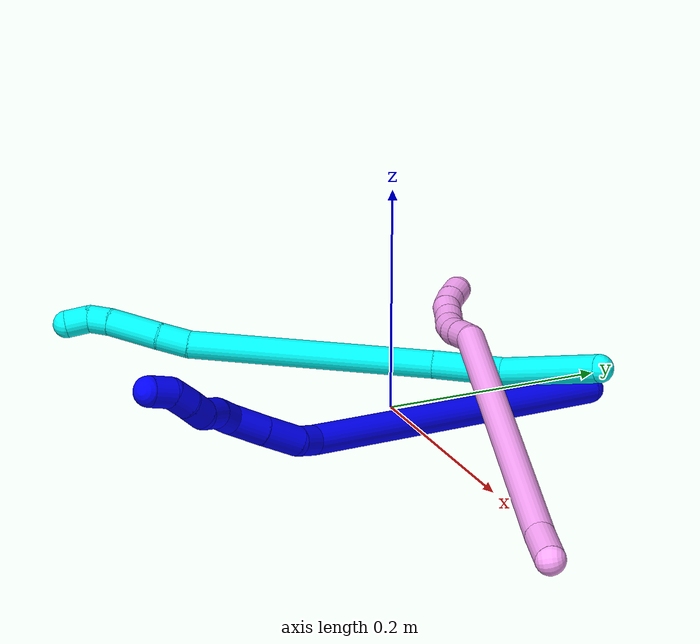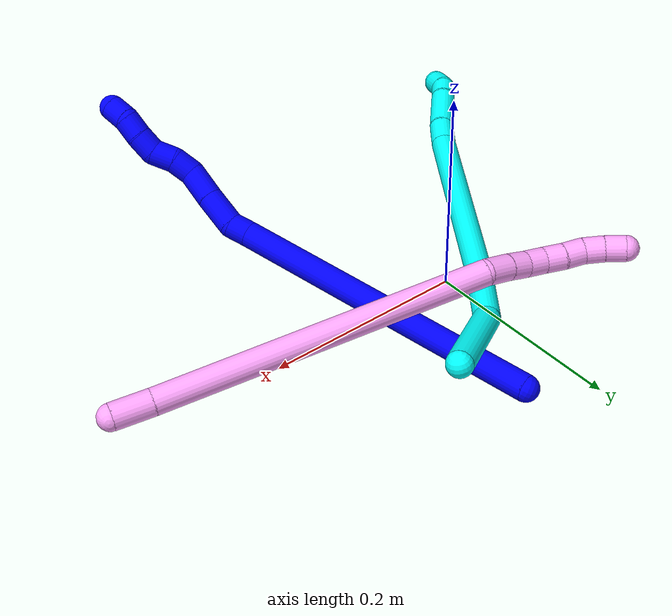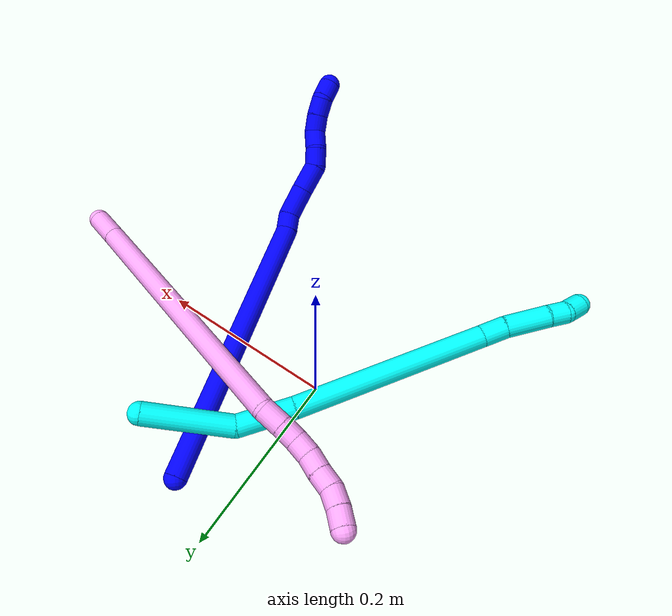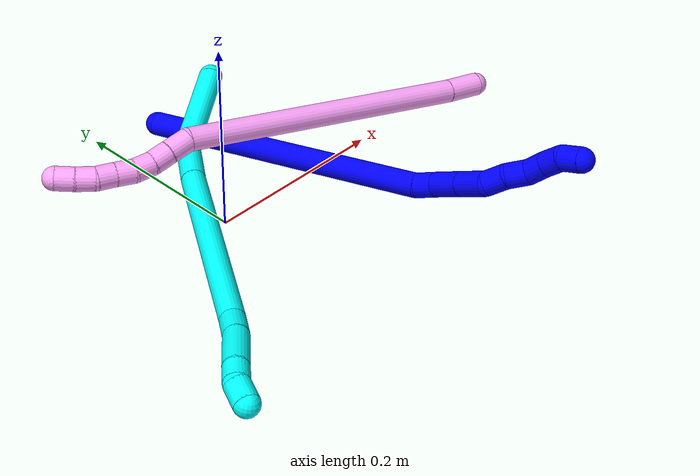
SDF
<sdf version="1.7">
 <world name="default">
  <model name="1">
   <static>0</static>
   <link name="1">
    <collision name="collision-cylinder-e_1_1_4">
     <pose>0.033354 -0.074062 0.131808 0.51193 0.21713 0.057033</pose>
     <geometry><cylinder><radius>0.0125</radius><length>0.309652</length></cylinder></geometry>
     <surface>
      <friction><ode><mu>1.16</mu><mu2>1.16</mu2><slip1>0</slip1><slip2>0</slip2></ode></friction>
      <contact><ode><kp>1e+06</kp><kd>1</kd><max_vel>0</max_vel><min_depth>0.001</min_depth></ode></contact>
     </surface>
    </collision>
    <visual name="visual-cylinder-e_1_1_4">
     <pose>0.033354 -0.074062 0.131808 0.51193 0.21713 0.057033</pose>
     <geometry><cylinder><radius>0.0125</radius><length>0.309652</length></cylinder></geometry>
     <material><ambient>0 0 1 1</ambient></material>
    </visual>
    <collision name="collision-cylinder-e_2_4_5">
     <pose>0.067639 -0.150783 0.273237 0.269541 0.093044 0.012625</pose>
     <geometry><cylinder><radius>0.0125</radius><length>0.020049</length></cylinder></geometry>
     <surface>
      <friction><ode><mu>1.16</mu><mu2>1.16</mu2><slip1>0</slip1><slip2>0</slip2></ode></friction>
      <contact><ode><kp>1e+06</kp><kd>1</kd><max_vel>0</max_vel><min_depth>0.001</min_depth></ode></contact>
     </surface>
    </collision>
    <visual name="visual-cylinder-e_2_4_5">
     <pose>0.067639 -0.150783 0.273237 0.269541 0.093044 0.012625</pose>
     <geometry><cylinder><radius>0.0125</radius><length>0.020049</length></cylinder></geometry>
     <material><ambient>0 0 1 1</ambient></material>
    </visual>
    <collision name="collision-cylinder-e_3_5_6">
     <pose>0.065426 -0.162755 0.297145 0.577776 -0.182289 -0.054314</pose>
     <geometry><cylinder><radius>0.0125</radius><length>0.034685</length></cylinder></geometry>
     <surface>
      <friction><ode><mu>1.16</mu><mu2>1.16</mu2><slip1>0</slip1><slip2>0</slip2></ode></friction>
      <contact><ode><kp>1e+06</kp><kd>1</kd><max_vel>0</max_vel><min_depth>0.001</min_depth></ode></contact>
     </surface>
    </collision>
    <visual name="visual-cylinder-e_3_5_6">
     <pose>0.065426 -0.162755 0.297145 0.577776 -0.182289 -0.054314</pose>
     <geometry><cylinder><radius>0.0125</radius><length>0.034685</length></cylinder></geometry>
     <material><ambient>0 0 1 1</ambient></material>
    </visual>
    <collision name="collision-cylinder-e_4_6_7">
     <pose>0.059016 -0.181005 0.324224 0.60966 -0.206339 -0.06513</pose>
     <geometry><cylinder><radius>0.0125</radius><length>0.031884</length></cylinder></geometry>
     <surface>
      <friction><ode><mu>1.16</mu><mu2>1.16</mu2><slip1>0</slip1><slip2>0</slip2></ode></friction>
      <contact><ode><kp>1e+06</kp><kd>1</kd><max_vel>0</max_vel><min_depth>0.001</min_depth></ode></contact>
     </surface>
    </collision>
    <visual name="visual-cylinder-e_4_6_7">
     <pose>0.059016 -0.181005 0.324224 0.60966 -0.206339 -0.06513</pose>
     <geometry><cylinder><radius>0.0125</radius><length>0.031884</length></cylinder></geometry>
     <material><ambient>0 0 1 1</ambient></material>
    </visual>
    <collision name="collision-cylinder-e_5_7_8">
     <pose>0.053867 -0.191292 0.3474 0.129563 -0.177977 -0.011576</pose>
     <geometry><cylinder><radius>0.0125</radius><length>0.021279</length></cylinder></geometry>
     <surface>
      <friction><ode><mu>1.16</mu><mu2>1.16</mu2><slip1>0</slip1><slip2>0</slip2></ode></friction>
      <contact><ode><kp>1e+06</kp><kd>1</kd><max_vel>0</max_vel><min_depth>0.001</min_depth></ode></contact>
     </surface>
    </collision>
    <visual name="visual-cylinder-e_5_7_8">
     <pose>0.053867 -0.191292 0.3474 0.129563 -0.177977 -0.011576</pose>
     <geometry><cylinder><radius>0.0125</radius><length>0.021279</length></cylinder></geometry>
     <material><ambient>0 0 1 1</ambient></material>
    </visual>
    <collision name="collision-cylinder-e_6_8_9">
     <pose>0.053087 -0.193364 0.36855 0.066667 0.101973 0.003403</pose>
     <geometry><cylinder><radius>0.0125</radius><length>0.021693</length></cylinder></geometry>
     <surface>
      <friction><ode><mu>1.16</mu><mu2>1.16</mu2><slip1>0</slip1><slip2>0</slip2></ode></friction>
      <contact><ode><kp>1e+06</kp><kd>1</kd><max_vel>0</max_vel><min_depth>0.001</min_depth></ode></contact>
     </surface>
    </collision>
    <visual name="visual-cylinder-e_6_8_9">
     <pose>0.053087 -0.193364 0.36855 0.066667 0.101973 0.003403</pose>
     <geometry><cylinder><radius>0.0125</radius><length>0.021693</length></cylinder></geometry>
     <material><ambient>0 0 1 1</ambient></material>
    </visual>
    <collision name="collision-cylinder-e_7_9_10">
     <pose>0.050614 -0.19633 0.388655 0.236121 -0.356488 -0.042731</pose>
     <geometry><cylinder><radius>0.0125</radius><length>0.020501</length></cylinder></geometry>
     <surface>
      <friction><ode><mu>1.16</mu><mu2>1.16</mu2><slip1>0</slip1><slip2>0</slip2></ode></friction>
      <contact><ode><kp>1e+06</kp><kd>1</kd><max_vel>0</max_vel><min_depth>0.001</min_depth></ode></contact>
     </surface>
    </collision>
    <visual name="visual-cylinder-e_7_9_10">
     <pose>0.050614 -0.19633 0.388655 0.236121 -0.356488 -0.042731</pose>
     <geometry><cylinder><radius>0.0125</radius><length>0.020501</length></cylinder></geometry>
     <material><ambient>0 0 1 1</ambient></material>
    </visual>
    <collision name="collision-cylinder-e_8_10_11">
     <pose>0.043445 -0.202133 0.406681 0.388611 -0.365481 -0.072702</pose>
     <geometry><cylinder><radius>0.0125</radius><length>0.0201</length></cylinder></geometry>
     <surface>
      <friction><ode><mu>1.16</mu><mu2>1.16</mu2><slip1>0</slip1><slip2>0</slip2></ode></friction>
      <contact><ode><kp>1e+06</kp><kd>1</kd><max_vel>0</max_vel><min_depth>0.001</min_depth></ode></contact>
     </surface>
    </collision>
    <visual name="visual-cylinder-e_8_10_11">
     <pose>0.043445 -0.202133 0.406681 0.388611 -0.365481 -0.072702</pose>
     <geometry><cylinder><radius>0.0125</radius><length>0.0201</length></cylinder></geometry>
     <material><ambient>0 0 1 1</ambient></material>
    </visual>
    <collision name="collision-cylinder-e_9_11_2">
     <pose>0.040198 -0.210911 0.423981 0.54492 0.034235 0.009566</pose>
     <geometry><cylinder><radius>0.0125</radius><length>0.020158</length></cylinder></geometry>
     <surface>
      <friction><ode><mu>1.16</mu><mu2>1.16</mu2><slip1>0</slip1><slip2>0</slip2></ode></friction>
      <contact><ode><kp>1e+06</kp><kd>1</kd><max_vel>0</max_vel><min_depth>0.001</min_depth></ode></contact>
     </surface>
    </collision>
    <visual name="visual-cylinder-e_9_11_2">
     <pose>0.040198 -0.210911 0.423981 0.54492 0.034235 0.009566</pose>
     <geometry><cylinder><radius>0.0125</radius><length>0.020158</length></cylinder></geometry>
     <material><ambient>0 0 1 1</ambient></material>
    </visual>
    <collision name="collision-sphere-2">
     <pose>0.040543 -0.216133 0.432596 0 -0 0</pose>
     <geometry><sphere><radius>0.0125</radius></sphere></geometry>
     <surface>
      <friction><ode><mu>1.16</mu><mu2>1.16</mu2><slip1>0</slip1><slip2>0</slip2></ode></friction>
      <contact><ode><kp>1e+06</kp><kd>1</kd><max_vel>0</max_vel><min_depth>0.001</min_depth></ode></contact>
     </surface>
    </collision>
    <visual name="visual-sphere-2">
     <pose>0.040543 -0.216133 0.432596 0 -0 0</pose>
     <geometry><sphere><radius>0.0125</radius></sphere></geometry>
     <material><ambient>0 0 1 1</ambient></material>
    </visual>
    <collision name="collision-sphere-11">
     <pose>0.039853 -0.20569 0.415367 0 -0 0</pose>
     <geometry><sphere><radius>0.0125</radius></sphere></geometry>
     <surface>
      <friction><ode><mu>1.16</mu><mu2>1.16</mu2><slip1>0</slip1><slip2>0</slip2></ode></friction>
      <contact><ode><kp>1e+06</kp><kd>1</kd><max_vel>0</max_vel><min_depth>0.001</min_depth></ode></contact>
     </surface>
    </collision>
    <visual name="visual-sphere-11">
     <pose>0.039853 -0.20569 0.415367 0 -0 0</pose>
     <geometry><sphere><radius>0.0125</radius></sphere></geometry>
     <material><ambient>0 0 1 1</ambient></material>
    </visual>
    <collision name="collision-sphere-10">
     <pose>0.047037 -0.198577 0.397995 0 -0 0</pose>
     <geometry><sphere><radius>0.0125</radius></sphere></geometry>
     <surface>
      <friction><ode><mu>1.16</mu><mu2>1.16</mu2><slip1>0</slip1><slip2>0</slip2></ode></friction>
      <contact><ode><kp>1e+06</kp><kd>1</kd><max_vel>0</max_vel><min_depth>0.001</min_depth></ode></contact>
     </surface>
    </collision>
    <visual name="visual-sphere-10">
     <pose>0.047037 -0.198577 0.397995 0 -0 0</pose>
     <geometry><sphere><radius>0.0125</radius></sphere></geometry>
     <material><ambient>0 0 1 1</ambient></material>
    </visual>
    <collision name="collision-sphere-9">
     <pose>0.054191 -0.194083 0.379316 0 -0 0</pose>
     <geometry><sphere><radius>0.0125</radius></sphere></geometry>
     <surface>
      <friction><ode><mu>1.16</mu><mu2>1.16</mu2><slip1>0</slip1><slip2>0</slip2></ode></friction>
      <contact><ode><kp>1e+06</kp><kd>1</kd><max_vel>0</max_vel><min_depth>0.001</min_depth></ode></contact>
     </surface>
    </collision>
    <visual name="visual-sphere-9">
     <pose>0.054191 -0.194083 0.379316 0 -0 0</pose>
     <geometry><sphere><radius>0.0125</radius></sphere></geometry>
     <material><ambient>0 0 1 1</ambient></material>
    </visual>
    <collision name="collision-sphere-4">
     <pose>0.066708 -0.148125 0.263617 0 -0 0</pose>
     <geometry><sphere><radius>0.0125</radius></sphere></geometry>
     <surface>
      <friction><ode><mu>1.16</mu><mu2>1.16</mu2><slip1>0</slip1><slip2>0</slip2></ode></friction>
      <contact><ode><kp>1e+06</kp><kd>1</kd><max_vel>0</max_vel><min_depth>0.001</min_depth></ode></contact>
     </surface>
    </collision>
    <visual name="visual-sphere-4">
     <pose>0.066708 -0.148125 0.263617 0 -0 0</pose>
     <geometry><sphere><radius>0.0125</radius></sphere></geometry>
     <material><ambient>0 0 1 1</ambient></material>
    </visual>
    <collision name="collision-sphere-1">
     <geometry><sphere><radius>0.0125</radius></sphere></geometry>
     <surface>
      <friction><ode><mu>1.16</mu><mu2>1.16</mu2><slip1>0</slip1><slip2>0</slip2></ode></friction>
      <contact><ode><kp>1e+06</kp><kd>1</kd><max_vel>0</max_vel><min_depth>0.001</min_depth></ode></contact>
     </surface>
    </collision>
    <visual name="visual-sphere-1">
     <geometry><sphere><radius>0.0125</radius></sphere></geometry>
     <material><ambient>0 0 1 1</ambient></material>
    </visual>
    <collision name="collision-sphere-8">
     <pose>0.051983 -0.192645 0.357784 0 -0 0</pose>
     <geometry><sphere><radius>0.0125</radius></sphere></geometry>
     <surface>
      <friction><ode><mu>1.16</mu><mu2>1.16</mu2><slip1>0</slip1><slip2>0</slip2></ode></friction>
      <contact><ode><kp>1e+06</kp><kd>1</kd><max_vel>0</max_vel><min_depth>0.001</min_depth></ode></contact>
     </surface>
    </collision>
    <visual name="visual-sphere-8">
     <pose>0.051983 -0.192645 0.357784 0 -0 0</pose>
     <geometry><sphere><radius>0.0125</radius></sphere></geometry>
     <material><ambient>0 0 1 1</ambient></material>
    </visual>
    <collision name="collision-sphere-5">
     <pose>0.06857 -0.15344 0.282858 0 -0 0</pose>
     <geometry><sphere><radius>0.0125</radius></sphere></geometry>
     <surface>
      <friction><ode><mu>1.16</mu><mu2>1.16</mu2><slip1>0</slip1><slip2>0</slip2></ode></friction>
      <contact><ode><kp>1e+06</kp><kd>1</kd><max_vel>0</max_vel><min_depth>0.001</min_depth></ode></contact>
     </surface>
    </collision>
    <visual name="visual-sphere-5">
     <pose>0.06857 -0.15344 0.282858 0 -0 0</pose>
     <geometry><sphere><radius>0.0125</radius></sphere></geometry>
     <material><ambient>0 0 1 1</ambient></material>
    </visual>
    <collision name="collision-sphere-6">
     <pose>0.062283 -0.17207 0.311431 0 -0 0</pose>
     <geometry><sphere><radius>0.0125</radius></sphere></geometry>
     <surface>
      <friction><ode><mu>1.16</mu><mu2>1.16</mu2><slip1>0</slip1><slip2>0</slip2></ode></friction>
      <contact><ode><kp>1e+06</kp><kd>1</kd><max_vel>0</max_vel><min_depth>0.001</min_depth></ode></contact>
     </surface>
    </collision>
    <visual name="visual-sphere-6">
     <pose>0.062283 -0.17207 0.311431 0 -0 0</pose>
     <geometry><sphere><radius>0.0125</radius></sphere></geometry>
     <material><ambient>0 0 1 1</ambient></material>
    </visual>
    <collision name="collision-sphere-7">
     <pose>0.05575 -0.189939 0.337016 0 -0 0</pose>
     <geometry><sphere><radius>0.0125</radius></sphere></geometry>
     <surface>
      <friction><ode><mu>1.16</mu><mu2>1.16</mu2><slip1>0</slip1><slip2>0</slip2></ode></friction>
      <contact><ode><kp>1e+06</kp><kd>1</kd><max_vel>0</max_vel><min_depth>0.001</min_depth></ode></contact>
     </surface>
    </collision>
    <visual name="visual-sphere-7">
     <pose>0.05575 -0.189939 0.337016 0 -0 0</pose>
     <geometry><sphere><radius>0.0125</radius></sphere></geometry>
     <material><ambient>0 0 1 1</ambient></material>
    </visual>
    <inertial>
     <pose>0.041708 -0.115954 0.214025 0 -0 0</pose>
     <mass>0.5</mass>
     <inertia>
      <ixx>0.002583</ixx>
      <ixy>0</ixy>
      <ixz>0</ixz>
      <iyy>0.002316</iyy>
      <iyz>0</iyz>
      <izz>0.000697</izz>
     </inertia>
    </inertial>
   </link>
   <pose>0.057993 0.165974 0.011495 0.182961 1.15858 -0.63953</pose>
  </model>
  <model name="3">
   <static>0</static>
   <link name="3">
    <collision name="collision-cylinder-e_1_1_4">
     <pose>-0.040622 -0.02107 -0.016817 2.24442 -0.984887 -1.67918</pose>
     <geometry><cylinder><radius>0.0125</radius><length>0.097508</length></cylinder></geometry>
     <surface>
      <friction><ode><mu>1.16</mu><mu2>1.16</mu2><slip1>0</slip1><slip2>0</slip2></ode></friction>
      <contact><ode><kp>1e+06</kp><kd>1</kd><max_vel>0</max_vel><min_depth>0.001</min_depth></ode></contact>
     </surface>
    </collision>
    <visual name="visual-cylinder-e_1_1_4">
     <pose>-0.040622 -0.02107 -0.016817 2.24442 -0.984887 -1.67918</pose>
     <geometry><cylinder><radius>0.0125</radius><length>0.097508</length></cylinder></geometry>
     <material><ambient>0.003922 1 0.996078 1</ambient></material>
    </visual>
    <collision name="collision-cylinder-e_2_4_5">
     <pose>-0.103645 -0.064507 -0.034263 1.59886 -0.78596 -0.806015</pose>
     <geometry><cylinder><radius>0.0125</radius><length>0.063324</length></cylinder></geometry>
     <surface>
      <friction><ode><mu>1.16</mu><mu2>1.16</mu2><slip1>0</slip1><slip2>0</slip2></ode></friction>
      <contact><ode><kp>1e+06</kp><kd>1</kd><max_vel>0</max_vel><min_depth>0.001</min_depth></ode></contact>
     </surface>
    </collision>
    <visual name="visual-cylinder-e_2_4_5">
     <pose>-0.103645 -0.064507 -0.034263 1.59886 -0.78596 -0.806015</pose>
     <geometry><cylinder><radius>0.0125</radius><length>0.063324</length></cylinder></geometry>
     <material><ambient>0.003922 1 0.996078 1</ambient></material>
    </visual>
    <collision name="collision-cylinder-e_3_5_6">
     <pose>-0.199138 -0.169324 -0.034855 1.57036 -0.725303 -0.725013</pose>
     <geometry><cylinder><radius>0.0125</radius><length>0.220366</length></cylinder></geometry>
     <surface>
      <friction><ode><mu>1.16</mu><mu2>1.16</mu2><slip1>0</slip1><slip2>0</slip2></ode></friction>
      <contact><ode><kp>1e+06</kp><kd>1</kd><max_vel>0</max_vel><min_depth>0.001</min_depth></ode></contact>
     </surface>
    </collision>
    <visual name="visual-cylinder-e_3_5_6">
     <pose>-0.199138 -0.169324 -0.034855 1.57036 -0.725303 -0.725013</pose>
     <geometry><cylinder><radius>0.0125</radius><length>0.220366</length></cylinder></geometry>
     <material><ambient>0.003922 1 0.996078 1</ambient></material>
    </visual>
    <collision name="collision-cylinder-e_4_6_7">
     <pose>-0.282362 -0.261244 -0.032668 1.34747 -0.80663 -0.656664</pose>
     <geometry><cylinder><radius>0.0125</radius><length>0.02807</length></cylinder></geometry>
     <surface>
      <friction><ode><mu>1.16</mu><mu2>1.16</mu2><slip1>0</slip1><slip2>0</slip2></ode></friction>
      <contact><ode><kp>1e+06</kp><kd>1</kd><max_vel>0</max_vel><min_depth>0.001</min_depth></ode></contact>
     </surface>
    </collision>
    <visual name="visual-cylinder-e_4_6_7">
     <pose>-0.282362 -0.261244 -0.032668 1.34747 -0.80663 -0.656664</pose>
     <geometry><cylinder><radius>0.0125</radius><length>0.02807</length></cylinder></geometry>
     <material><ambient>0.003922 1 0.996078 1</ambient></material>
    </visual>
    <collision name="collision-cylinder-e_5_7_8">
     <pose>-0.311844 -0.285156 -0.028263 1.41595 -0.923845 -0.805706</pose>
     <geometry><cylinder><radius>0.0125</radius><length>0.048499</length></cylinder></geometry>
     <surface>
      <friction><ode><mu>1.16</mu><mu2>1.16</mu2><slip1>0</slip1><slip2>0</slip2></ode></friction>
      <contact><ode><kp>1e+06</kp><kd>1</kd><max_vel>0</max_vel><min_depth>0.001</min_depth></ode></contact>
     </surface>
    </collision>
    <visual name="visual-cylinder-e_5_7_8">
     <pose>-0.311844 -0.285156 -0.028263 1.41595 -0.923845 -0.805706</pose>
     <geometry><cylinder><radius>0.0125</radius><length>0.048499</length></cylinder></geometry>
     <material><ambient>0.003922 1 0.996078 1</ambient></material>
    </visual>
    <collision name="collision-cylinder-e_6_8_9">
     <pose>-0.339027 -0.306038 -0.0262 1.60051 -0.882513 -0.905685</pose>
     <geometry><cylinder><radius>0.0125</radius><length>0.020287</length></cylinder></geometry>
     <surface>
      <friction><ode><mu>1.16</mu><mu2>1.16</mu2><slip1>0</slip1><slip2>0</slip2></ode></friction>
      <contact><ode><kp>1e+06</kp><kd>1</kd><max_vel>0</max_vel><min_depth>0.001</min_depth></ode></contact>
     </surface>
    </collision>
    <visual name="visual-cylinder-e_6_8_9">
     <pose>-0.339027 -0.306038 -0.0262 1.60051 -0.882513 -0.905685</pose>
     <geometry><cylinder><radius>0.0125</radius><length>0.020287</length></cylinder></geometry>
     <material><ambient>0.003922 1 0.996078 1</ambient></material>
    </visual>
    <collision name="collision-cylinder-e_7_9_2">
     <pose>-0.351675 -0.322125 -0.028437 1.77974 -0.454082 -0.555549</pose>
     <geometry><cylinder><radius>0.0125</radius><length>0.021946</length></cylinder></geometry>
     <surface>
      <friction><ode><mu>1.16</mu><mu2>1.16</mu2><slip1>0</slip1><slip2>0</slip2></ode></friction>
      <contact><ode><kp>1e+06</kp><kd>1</kd><max_vel>0</max_vel><min_depth>0.001</min_depth></ode></contact>
     </surface>
    </collision>
    <visual name="visual-cylinder-e_7_9_2">
     <pose>-0.351675 -0.322125 -0.028437 1.77974 -0.454082 -0.555549</pose>
     <geometry><cylinder><radius>0.0125</radius><length>0.021946</length></cylinder></geometry>
     <material><ambient>0.003922 1 0.996078 1</ambient></material>
    </visual>
    <collision name="collision-sphere-2">
     <pose>-0.356488 -0.331772 -0.030482 0 -0 0</pose>
     <geometry><sphere><radius>0.0125</radius></sphere></geometry>
     <surface>
      <friction><ode><mu>1.16</mu><mu2>1.16</mu2><slip1>0</slip1><slip2>0</slip2></ode></friction>
      <contact><ode><kp>1e+06</kp><kd>1</kd><max_vel>0</max_vel><min_depth>0.001</min_depth></ode></contact>
     </surface>
    </collision>
    <visual name="visual-sphere-2">
     <pose>-0.356488 -0.331772 -0.030482 0 -0 0</pose>
     <geometry><sphere><radius>0.0125</radius></sphere></geometry>
     <material><ambient>0.003922 1 0.996078 1</ambient></material>
    </visual>
    <collision name="collision-sphere-9">
     <pose>-0.346862 -0.312479 -0.026391 0 -0 0</pose>
     <geometry><sphere><radius>0.0125</radius></sphere></geometry>
     <surface>
      <friction><ode><mu>1.16</mu><mu2>1.16</mu2><slip1>0</slip1><slip2>0</slip2></ode></friction>
      <contact><ode><kp>1e+06</kp><kd>1</kd><max_vel>0</max_vel><min_depth>0.001</min_depth></ode></contact>
     </surface>
    </collision>
    <visual name="visual-sphere-9">
     <pose>-0.346862 -0.312479 -0.026391 0 -0 0</pose>
     <geometry><sphere><radius>0.0125</radius></sphere></geometry>
     <material><ambient>0.003922 1 0.996078 1</ambient></material>
    </visual>
    <collision name="collision-sphere-4">
     <pose>-0.081245 -0.04214 -0.033635 0 -0 0</pose>
     <geometry><sphere><radius>0.0125</radius></sphere></geometry>
     <surface>
      <friction><ode><mu>1.16</mu><mu2>1.16</mu2><slip1>0</slip1><slip2>0</slip2></ode></friction>
      <contact><ode><kp>1e+06</kp><kd>1</kd><max_vel>0</max_vel><min_depth>0.001</min_depth></ode></contact>
     </surface>
    </collision>
    <visual name="visual-sphere-4">
     <pose>-0.081245 -0.04214 -0.033635 0 -0 0</pose>
     <geometry><sphere><radius>0.0125</radius></sphere></geometry>
     <material><ambient>0.003922 1 0.996078 1</ambient></material>
    </visual>
    <collision name="collision-sphere-1">
     <geometry><sphere><radius>0.0125</radius></sphere></geometry>
     <surface>
      <friction><ode><mu>1.16</mu><mu2>1.16</mu2><slip1>0</slip1><slip2>0</slip2></ode></friction>
      <contact><ode><kp>1e+06</kp><kd>1</kd><max_vel>0</max_vel><min_depth>0.001</min_depth></ode></contact>
     </surface>
    </collision>
    <visual name="visual-sphere-1">
     <geometry><sphere><radius>0.0125</radius></sphere></geometry>
     <material><ambient>0.003922 1 0.996078 1</ambient></material>
    </visual>
    <collision name="collision-sphere-8">
     <pose>-0.331193 -0.299598 -0.026008 0 -0 0</pose>
     <geometry><sphere><radius>0.0125</radius></sphere></geometry>
     <surface>
      <friction><ode><mu>1.16</mu><mu2>1.16</mu2><slip1>0</slip1><slip2>0</slip2></ode></friction>
      <contact><ode><kp>1e+06</kp><kd>1</kd><max_vel>0</max_vel><min_depth>0.001</min_depth></ode></contact>
     </surface>
    </collision>
    <visual name="visual-sphere-8">
     <pose>-0.331193 -0.299598 -0.026008 0 -0 0</pose>
     <geometry><sphere><radius>0.0125</radius></sphere></geometry>
     <material><ambient>0.003922 1 0.996078 1</ambient></material>
    </visual>
    <collision name="collision-sphere-5">
     <pose>-0.126046 -0.086874 -0.034891 0 -0 0</pose>
     <geometry><sphere><radius>0.0125</radius></sphere></geometry>
     <surface>
      <friction><ode><mu>1.16</mu><mu2>1.16</mu2><slip1>0</slip1><slip2>0</slip2></ode></friction>
      <contact><ode><kp>1e+06</kp><kd>1</kd><max_vel>0</max_vel><min_depth>0.001</min_depth></ode></contact>
     </surface>
    </collision>
    <visual name="visual-sphere-5">
     <pose>-0.126046 -0.086874 -0.034891 0 -0 0</pose>
     <geometry><sphere><radius>0.0125</radius></sphere></geometry>
     <material><ambient>0.003922 1 0.996078 1</ambient></material>
    </visual>
    <collision name="collision-sphere-6">
     <pose>-0.272229 -0.251774 -0.034819 0 -0 0</pose>
     <geometry><sphere><radius>0.0125</radius></sphere></geometry>
     <surface>
      <friction><ode><mu>1.16</mu><mu2>1.16</mu2><slip1>0</slip1><slip2>0</slip2></ode></friction>
      <contact><ode><kp>1e+06</kp><kd>1</kd><max_vel>0</max_vel><min_depth>0.001</min_depth></ode></contact>
     </surface>
    </collision>
    <visual name="visual-sphere-6">
     <pose>-0.272229 -0.251774 -0.034819 0 -0 0</pose>
     <geometry><sphere><radius>0.0125</radius></sphere></geometry>
     <material><ambient>0.003922 1 0.996078 1</ambient></material>
    </visual>
    <collision name="collision-sphere-7">
     <pose>-0.292494 -0.270714 -0.030517 0 -0 0</pose>
     <geometry><sphere><radius>0.0125</radius></sphere></geometry>
     <surface>
      <friction><ode><mu>1.16</mu><mu2>1.16</mu2><slip1>0</slip1><slip2>0</slip2></ode></friction>
      <contact><ode><kp>1e+06</kp><kd>1</kd><max_vel>0</max_vel><min_depth>0.001</min_depth></ode></contact>
     </surface>
    </collision>
    <visual name="visual-sphere-7">
     <pose>-0.292494 -0.270714 -0.030517 0 -0 0</pose>
     <geometry><sphere><radius>0.0125</radius></sphere></geometry>
     <material><ambient>0.003922 1 0.996078 1</ambient></material>
    </visual>
    <inertial>
     <pose>-0.184106 -0.155787 -0.029867 0 -0 0</pose>
     <mass>0.5</mass>
     <inertia><ixx>-2e-05</ixx><ixy>0</ixy><ixz>0</ixz><iyy>-6.1e-05</iyy><iyz>0</iyz><izz>0.001429</izz></inertia>
    </inertial>
   </link>
   <pose>0.115832 0.142741 0.055447 0.131787 0.178249 0.153437</pose>
  </model>
  <model name="4">
   <static>0</static>
   <link name="4">
    <collision name="collision-cylinder-e_1_1_4">
     <pose>-0.014799 0.009819 -0.005613 -2.09007 -0.918245 1.41129</pose>
     <geometry><cylinder><radius>0.0125</radius><length>0.037253</length></cylinder></geometry>
     <surface>
      <friction><ode><mu>1.16</mu><mu2>1.16</mu2><slip1>0</slip1><slip2>0</slip2></ode></friction>
      <contact><ode><kp>1e+06</kp><kd>1</kd><max_vel>0</max_vel><min_depth>0.001</min_depth></ode></contact>
     </surface>
    </collision>
    <visual name="visual-cylinder-e_1_1_4">
     <pose>-0.014799 0.009819 -0.005613 -2.09007 -0.918245 1.41129</pose>
     <geometry><cylinder><radius>0.0125</radius><length>0.037253</length></cylinder></geometry>
     <material><ambient>1 0.65098 0.996078 1</ambient></material>
    </visual>
    <collision name="collision-cylinder-e_2_4_5">
     <pose>-0.161123 0.097737 -0.053773 -2.06964 -0.976224 1.45889</pose>
     <geometry><cylinder><radius>0.0125</radius><length>0.317542</length></cylinder></geometry>
     <surface>
      <friction><ode><mu>1.16</mu><mu2>1.16</mu2><slip1>0</slip1><slip2>0</slip2></ode></friction>
      <contact><ode><kp>1e+06</kp><kd>1</kd><max_vel>0</max_vel><min_depth>0.001</min_depth></ode></contact>
     </surface>
    </collision>
    <visual name="visual-cylinder-e_2_4_5">
     <pose>-0.161123 0.097737 -0.053773 -2.06964 -0.976224 1.45889</pose>
     <geometry><cylinder><radius>0.0125</radius><length>0.317542</length></cylinder></geometry>
     <material><ambient>1 0.65098 0.996078 1</ambient></material>
    </visual>
    <collision name="collision-cylinder-e_3_5_6">
     <pose>-0.299914 0.183776 -0.102662 -2.24469 -0.620839 1.17607</pose>
     <geometry><cylinder><radius>0.0125</radius><length>0.024987</length></cylinder></geometry>
     <surface>
      <friction><ode><mu>1.16</mu><mu2>1.16</mu2><slip1>0</slip1><slip2>0</slip2></ode></friction>
      <contact><ode><kp>1e+06</kp><kd>1</kd><max_vel>0</max_vel><min_depth>0.001</min_depth></ode></contact>
     </surface>
    </collision>
    <visual name="visual-cylinder-e_3_5_6">
     <pose>-0.299914 0.183776 -0.102662 -2.24469 -0.620839 1.17607</pose>
     <geometry><cylinder><radius>0.0125</radius><length>0.024987</length></cylinder></geometry>
     <material><ambient>1 0.65098 0.996078 1</ambient></material>
    </visual>
    <collision name="collision-cylinder-e_4_6_7">
     <pose>-0.312786 0.198534 -0.113874 -2.19114 -0.589519 1.0661</pose>
     <geometry><cylinder><radius>0.0125</radius><length>0.02016</length></cylinder></geometry>
     <surface>
      <friction><ode><mu>1.16</mu><mu2>1.16</mu2><slip1>0</slip1><slip2>0</slip2></ode></friction>
      <contact><ode><kp>1e+06</kp><kd>1</kd><max_vel>0</max_vel><min_depth>0.001</min_depth></ode></contact>
     </surface>
    </collision>
    <visual name="visual-cylinder-e_4_6_7">
     <pose>-0.312786 0.198534 -0.113874 -2.19114 -0.589519 1.0661</pose>
     <geometry><cylinder><radius>0.0125</radius><length>0.02016</length></cylinder></geometry>
     <material><ambient>1 0.65098 0.996078 1</ambient></material>
    </visual>
    <collision name="collision-cylinder-e_5_7_8">
     <pose>-0.325215 0.211747 -0.122337 -2.08262 -0.749328 1.18329</pose>
     <geometry><cylinder><radius>0.0125</radius><length>0.020038</length></cylinder></geometry>
     <surface>
      <friction><ode><mu>1.16</mu><mu2>1.16</mu2><slip1>0</slip1><slip2>0</slip2></ode></friction>
      <contact><ode><kp>1e+06</kp><kd>1</kd><max_vel>0</max_vel><min_depth>0.001</min_depth></ode></contact>
     </surface>
    </collision>
    <visual name="visual-cylinder-e_5_7_8">
     <pose>-0.325215 0.211747 -0.122337 -2.08262 -0.749328 1.18329</pose>
     <geometry><cylinder><radius>0.0125</radius><length>0.020038</length></cylinder></geometry>
     <material><ambient>1 0.65098 0.996078 1</ambient></material>
    </visual>
    <collision name="collision-cylinder-e_6_8_9">
     <pose>-0.339785 0.224276 -0.127503 -1.82184 -0.885502 1.09706</pose>
     <geometry><cylinder><radius>0.0125</radius><length>0.020011</length></cylinder></geometry>
     <surface>
      <friction><ode><mu>1.16</mu><mu2>1.16</mu2><slip1>0</slip1><slip2>0</slip2></ode></friction>
      <contact><ode><kp>1e+06</kp><kd>1</kd><max_vel>0</max_vel><min_depth>0.001</min_depth></ode></contact>
     </surface>
    </collision>
    <visual name="visual-cylinder-e_6_8_9">
     <pose>-0.339785 0.224276 -0.127503 -1.82184 -0.885502 1.09706</pose>
     <geometry><cylinder><radius>0.0125</radius><length>0.020011</length></cylinder></geometry>
     <material><ambient>1 0.65098 0.996078 1</ambient></material>
    </visual>
    <collision name="collision-cylinder-e_7_9_10">
     <pose>-0.355439 0.236091 -0.13137 -1.95464 -0.911622 1.25686</pose>
     <geometry><cylinder><radius>0.0125</radius><length>0.020006</length></cylinder></geometry>
     <surface>
      <friction><ode><mu>1.16</mu><mu2>1.16</mu2><slip1>0</slip1><slip2>0</slip2></ode></friction>
      <contact><ode><kp>1e+06</kp><kd>1</kd><max_vel>0</max_vel><min_depth>0.001</min_depth></ode></contact>
     </surface>
    </collision>
    <visual name="visual-cylinder-e_7_9_10">
     <pose>-0.355439 0.236091 -0.13137 -1.95464 -0.911622 1.25686</pose>
     <geometry><cylinder><radius>0.0125</radius><length>0.020006</length></cylinder></geometry>
     <material><ambient>1 0.65098 0.996078 1</ambient></material>
    </visual>
    <collision name="collision-cylinder-e_8_10_11">
     <pose>-0.371121 0.248033 -0.133066 -1.47553 -0.890513 0.818586</pose>
     <geometry><cylinder><radius>0.0125</radius><length>0.020001</length></cylinder></geometry>
     <surface>
      <friction><ode><mu>1.16</mu><mu2>1.16</mu2><slip1>0</slip1><slip2>0</slip2></ode></friction>
      <contact><ode><kp>1e+06</kp><kd>1</kd><max_vel>0</max_vel><min_depth>0.001</min_depth></ode></contact>
     </surface>
    </collision>
    <visual name="visual-cylinder-e_8_10_11">
     <pose>-0.371121 0.248033 -0.133066 -1.47553 -0.890513 0.818586</pose>
     <geometry><cylinder><radius>0.0125</radius><length>0.020001</length></cylinder></geometry>
     <material><ambient>1 0.65098 0.996078 1</ambient></material>
    </visual>
    <collision name="collision-cylinder-e_9_11_2">
     <pose>-0.386336 0.260757 -0.130764 -1.31294 -0.838977 0.661919</pose>
     <geometry><cylinder><radius>0.0125</radius><length>0.020003</length></cylinder></geometry>
     <surface>
      <friction><ode><mu>1.16</mu><mu2>1.16</mu2><slip1>0</slip1><slip2>0</slip2></ode></friction>
      <contact><ode><kp>1e+06</kp><kd>1</kd><max_vel>0</max_vel><min_depth>0.001</min_depth></ode></contact>
     </surface>
    </collision>
    <visual name="visual-cylinder-e_9_11_2">
     <pose>-0.386336 0.260757 -0.130764 -1.31294 -0.838977 0.661919</pose>
     <geometry><cylinder><radius>0.0125</radius><length>0.020003</length></cylinder></geometry>
     <material><ambient>1 0.65098 0.996078 1</ambient></material>
    </visual>
    <collision name="collision-sphere-2">
     <pose>-0.393777 0.26722 -0.129059 0 -0 0</pose>
     <geometry><sphere><radius>0.0125</radius></sphere></geometry>
     <surface>
      <friction><ode><mu>1.16</mu><mu2>1.16</mu2><slip1>0</slip1><slip2>0</slip2></ode></friction>
      <contact><ode><kp>1e+06</kp><kd>1</kd><max_vel>0</max_vel><min_depth>0.001</min_depth></ode></contact>
     </surface>
    </collision>
    <visual name="visual-sphere-2">
     <pose>-0.393777 0.26722 -0.129059 0 -0 0</pose>
     <geometry><sphere><radius>0.0125</radius></sphere></geometry>
     <material><ambient>1 0.65098 0.996078 1</ambient></material>
    </visual>
    <collision name="collision-sphere-11">
     <pose>-0.378895 0.254295 -0.132468 0 -0 0</pose>
     <geometry><sphere><radius>0.0125</radius></sphere></geometry>
     <surface>
      <friction><ode><mu>1.16</mu><mu2>1.16</mu2><slip1>0</slip1><slip2>0</slip2></ode></friction>
      <contact><ode><kp>1e+06</kp><kd>1</kd><max_vel>0</max_vel><min_depth>0.001</min_depth></ode></contact>
     </surface>
    </collision>
    <visual name="visual-sphere-11">
     <pose>-0.378895 0.254295 -0.132468 0 -0 0</pose>
     <geometry><sphere><radius>0.0125</radius></sphere></geometry>
     <material><ambient>1 0.65098 0.996078 1</ambient></material>
    </visual>
    <collision name="collision-sphere-10">
     <pose>-0.363346 0.241771 -0.133665 0 -0 0</pose>
     <geometry><sphere><radius>0.0125</radius></sphere></geometry>
     <surface>
      <friction><ode><mu>1.16</mu><mu2>1.16</mu2><slip1>0</slip1><slip2>0</slip2></ode></friction>
      <contact><ode><kp>1e+06</kp><kd>1</kd><max_vel>0</max_vel><min_depth>0.001</min_depth></ode></contact>
     </surface>
    </collision>
    <visual name="visual-sphere-10">
     <pose>-0.363346 0.241771 -0.133665 0 -0 0</pose>
     <geometry><sphere><radius>0.0125</radius></sphere></geometry>
     <material><ambient>1 0.65098 0.996078 1</ambient></material>
    </visual>
    <collision name="collision-sphere-9">
     <pose>-0.347532 0.23041 -0.129076 0 -0 0</pose>
     <geometry><sphere><radius>0.0125</radius></sphere></geometry>
     <surface>
      <friction><ode><mu>1.16</mu><mu2>1.16</mu2><slip1>0</slip1><slip2>0</slip2></ode></friction>
      <contact><ode><kp>1e+06</kp><kd>1</kd><max_vel>0</max_vel><min_depth>0.001</min_depth></ode></contact>
     </surface>
    </collision>
    <visual name="visual-sphere-9">
     <pose>-0.347532 0.23041 -0.129076 0 -0 0</pose>
     <geometry><sphere><radius>0.0125</radius></sphere></geometry>
     <material><ambient>1 0.65098 0.996078 1</ambient></material>
    </visual>
    <collision name="collision-sphere-4">
     <pose>-0.029599 0.019639 -0.011225 0 -0 0</pose>
     <geometry><sphere><radius>0.0125</radius></sphere></geometry>
     <surface>
      <friction><ode><mu>1.16</mu><mu2>1.16</mu2><slip1>0</slip1><slip2>0</slip2></ode></friction>
      <contact><ode><kp>1e+06</kp><kd>1</kd><max_vel>0</max_vel><min_depth>0.001</min_depth></ode></contact>
     </surface>
    </collision>
    <visual name="visual-sphere-4">
     <pose>-0.029599 0.019639 -0.011225 0 -0 0</pose>
     <geometry><sphere><radius>0.0125</radius></sphere></geometry>
     <material><ambient>1 0.65098 0.996078 1</ambient></material>
    </visual>
    <collision name="collision-sphere-1">
     <geometry><sphere><radius>0.0125</radius></sphere></geometry>
     <surface>
      <friction><ode><mu>1.16</mu><mu2>1.16</mu2><slip1>0</slip1><slip2>0</slip2></ode></friction>
      <contact><ode><kp>1e+06</kp><kd>1</kd><max_vel>0</max_vel><min_depth>0.001</min_depth></ode></contact>
     </surface>
    </collision>
    <visual name="visual-sphere-1">
     <geometry><sphere><radius>0.0125</radius></sphere></geometry>
     <material><ambient>1 0.65098 0.996078 1</ambient></material>
    </visual>
    <collision name="collision-sphere-8">
     <pose>-0.332039 0.218142 -0.12593 0 -0 0</pose>
     <geometry><sphere><radius>0.0125</radius></sphere></geometry>
     <surface>
      <friction><ode><mu>1.16</mu><mu2>1.16</mu2><slip1>0</slip1><slip2>0</slip2></ode></friction>
      <contact><ode><kp>1e+06</kp><kd>1</kd><max_vel>0</max_vel><min_depth>0.001</min_depth></ode></contact>
     </surface>
    </collision>
    <visual name="visual-sphere-8">
     <pose>-0.332039 0.218142 -0.12593 0 -0 0</pose>
     <geometry><sphere><radius>0.0125</radius></sphere></geometry>
     <material><ambient>1 0.65098 0.996078 1</ambient></material>
    </visual>
    <collision name="collision-sphere-5">
     <pose>-0.292647 0.175835 -0.096321 0 -0 0</pose>
     <geometry><sphere><radius>0.0125</radius></sphere></geometry>
     <surface>
      <friction><ode><mu>1.16</mu><mu2>1.16</mu2><slip1>0</slip1><slip2>0</slip2></ode></friction>
      <contact><ode><kp>1e+06</kp><kd>1</kd><max_vel>0</max_vel><min_depth>0.001</min_depth></ode></contact>
     </surface>
    </collision>
    <visual name="visual-sphere-5">
     <pose>-0.292647 0.175835 -0.096321 0 -0 0</pose>
     <geometry><sphere><radius>0.0125</radius></sphere></geometry>
     <material><ambient>1 0.65098 0.996078 1</ambient></material>
    </visual>
    <collision name="collision-sphere-6">
     <pose>-0.307182 0.191717 -0.109004 0 -0 0</pose>
     <geometry><sphere><radius>0.0125</radius></sphere></geometry>
     <surface>
      <friction><ode><mu>1.16</mu><mu2>1.16</mu2><slip1>0</slip1><slip2>0</slip2></ode></friction>
      <contact><ode><kp>1e+06</kp><kd>1</kd><max_vel>0</max_vel><min_depth>0.001</min_depth></ode></contact>
     </surface>
    </collision>
    <visual name="visual-sphere-6">
     <pose>-0.307182 0.191717 -0.109004 0 -0 0</pose>
     <geometry><sphere><radius>0.0125</radius></sphere></geometry>
     <material><ambient>1 0.65098 0.996078 1</ambient></material>
    </visual>
    <collision name="collision-sphere-7">
     <pose>-0.31839 0.205352 -0.118745 0 -0 0</pose>
     <geometry><sphere><radius>0.0125</radius></sphere></geometry>
     <surface>
      <friction><ode><mu>1.16</mu><mu2>1.16</mu2><slip1>0</slip1><slip2>0</slip2></ode></friction>
      <contact><ode><kp>1e+06</kp><kd>1</kd><max_vel>0</max_vel><min_depth>0.001</min_depth></ode></contact>
     </surface>
    </collision>
    <visual name="visual-sphere-7">
     <pose>-0.31839 0.205352 -0.118745 0 -0 0</pose>
     <geometry><sphere><radius>0.0125</radius></sphere></geometry>
     <material><ambient>1 0.65098 0.996078 1</ambient></material>
    </visual>
    <inertial>
     <pose>-0.202183 0.127253 -0.070107 0 -0 0</pose>
     <mass>0.5</mass>
     <inertia>
      <ixx>0.001644</ixx>
      <ixy>0</ixy>
      <ixz>0</ixz>
      <iyy>0.003326</iyy>
      <iyz>0</iyz>
      <izz>0.000894</izz>
     </inertia>
    </inertial>
   </link>
   <pose>0.353885 -0.028697 0.01241 -1.24081 0.727112 -0.378525</pose>
  </model>
 </world>
</sdf>
